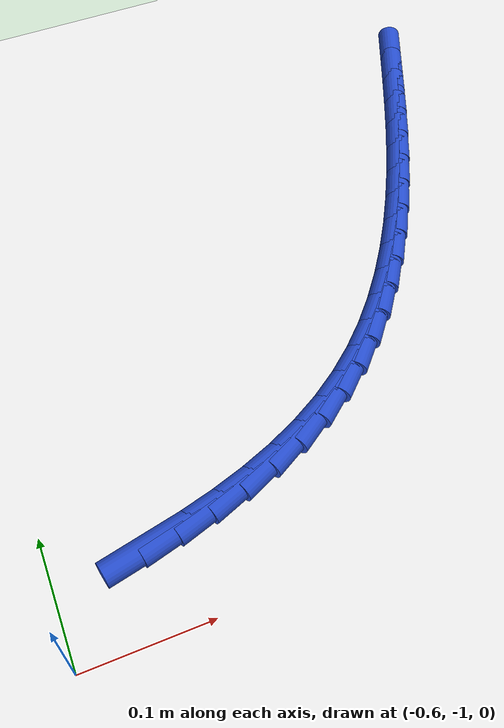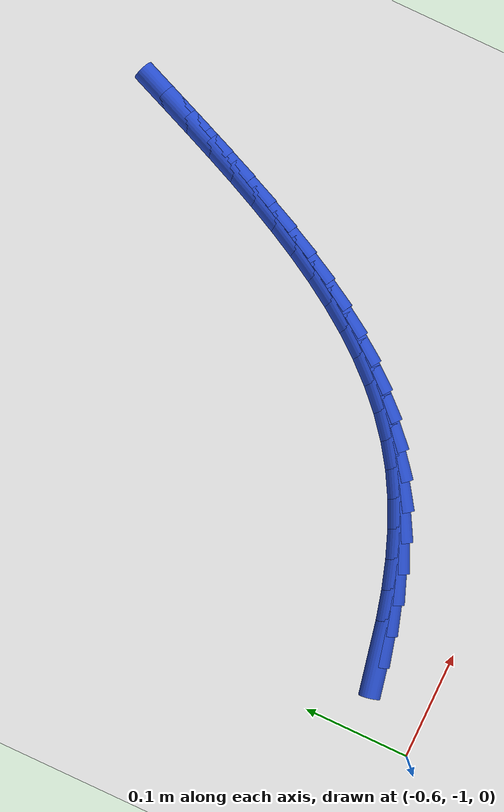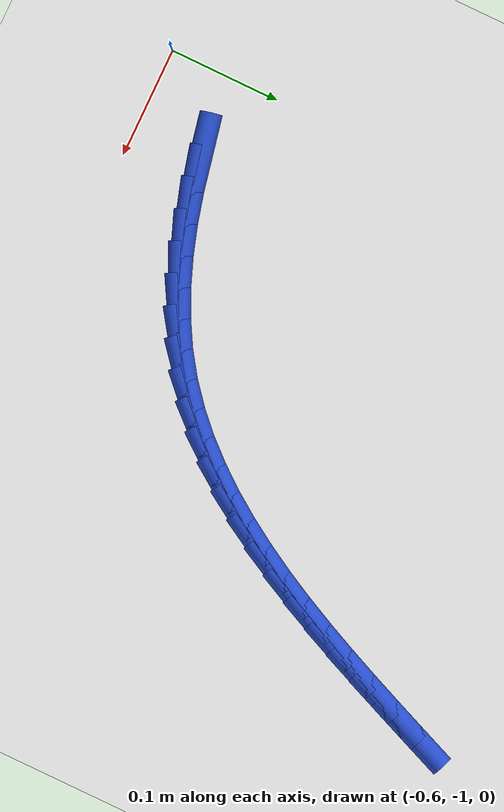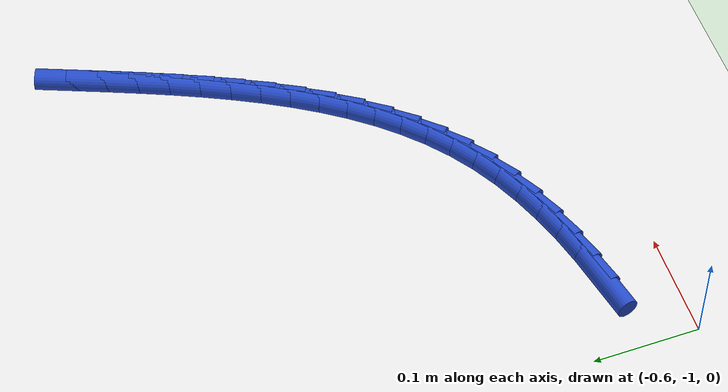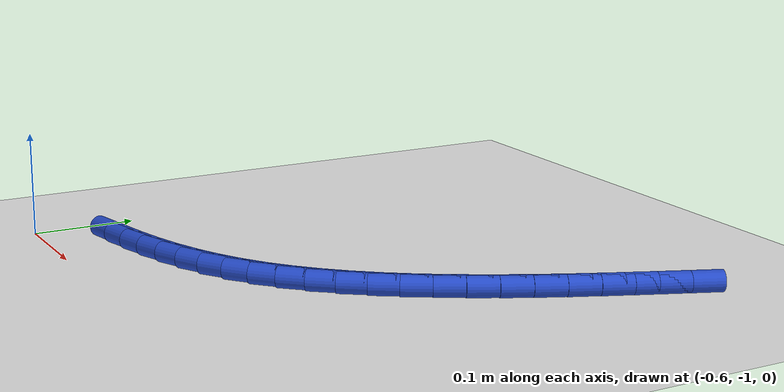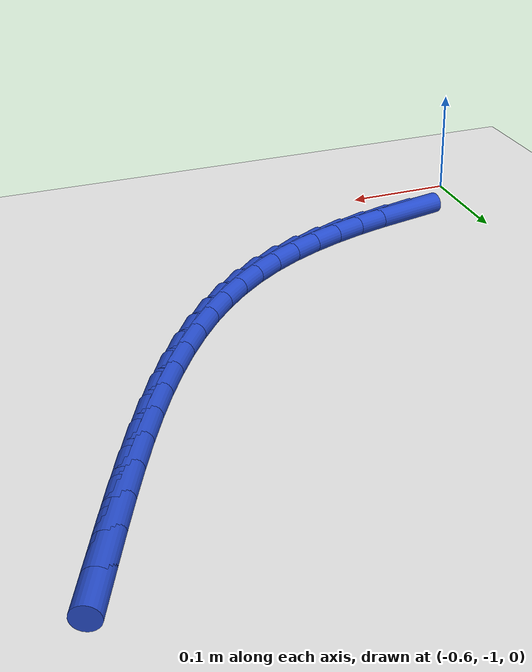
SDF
<sdf version="1.6">
 <world name="default">
  <model name="ground_plane">
   <static>1</static>
   <link name="link">
    <collision name="collision">
     <geometry><plane><normal>0 0 1</normal><size>100 100</size></plane></geometry>
     <surface><friction><ode><mu>100</mu><mu2>50</mu2></ode></friction></surface>
    </collision>
    <visual name="visual">
     <cast_shadows>0</cast_shadows>
     <geometry><plane><normal>0 0 1</normal><size>100 100</size></plane></geometry>
     <material>
      <script><uri>file://media/materials/scripts/gazebo.material</uri><name>Gazebo/WhiteGlow</name></script>
     </material>
    </visual>
   </link>
  </model>
  <model name="line">
   <link name="link_209">
    <pose>-0.5257086787405858 -0.9379063727491833 0.01 0 1.57 0.20687545780323452</pose>
    <collision name="collision">
     <geometry><cylinder><radius>0.01</radius><length>0.08</length></cylinder></geometry>
    </collision>
    <visual name="visual">
     <material>
      <script><name>Gazebo/Blue</name><uri>file://media/materials/scripts/gazebo.material</uri></script>
     </material>
     <geometry><cylinder><radius>0.01</radius><length>0.08</length></cylinder></geometry>
    </visual>
   </link>
   <link name="link_210">
    <pose>-0.49770723597419175 -0.9320294826262335 0.01 0 1.57 0.25379598229772776</pose>
    <collision name="collision">
     <geometry><cylinder><radius>0.01</radius><length>0.08</length></cylinder></geometry>
    </collision>
    <visual name="visual">
     <material>
      <script><name>Gazebo/Blue</name><uri>file://media/materials/scripts/gazebo.material</uri></script>
     </material>
     <geometry><cylinder><radius>0.01</radius><length>0.08</length></cylinder></geometry>
    </visual>
   </link>
   <link name="link_211">
    <pose>-0.47020699255068943 -0.9248962125755883 0.01 0 1.57 0.30713788859632263</pose>
    <collision name="collision">
     <geometry><cylinder><radius>0.01</radius><length>0.08</length></cylinder></geometry>
    </collision>
    <visual name="visual">
     <material>
      <script><name>Gazebo/Blue</name><uri>file://media/materials/scripts/gazebo.material</uri></script>
     </material>
     <geometry><cylinder><radius>0.01</radius><length>0.08</length></cylinder></geometry>
    </visual>
   </link>
   <link name="link_212">
    <pose>-0.44340550684644026 -0.916395462194677 0.01 0 1.57 0.36770519047508293</pose>
    <collision name="collision">
     <geometry><cylinder><radius>0.01</radius><length>0.08</length></cylinder></geometry>
    </collision>
    <visual name="visual">
     <material>
      <script><name>Gazebo/Blue</name><uri>file://media/materials/scripts/gazebo.material</uri></script>
     </material>
     <geometry><cylinder><radius>0.01</radius><length>0.08</length></cylinder></geometry>
    </visual>
   </link>
   <link name="link_213">
    <pose>-0.417500337237805 -0.9064161310809272 0.01 0 1.57 0.43630964592953353</pose>
    <collision name="collision">
     <geometry><cylinder><radius>0.01</radius><length>0.08</length></cylinder></geometry>
    </collision>
    <visual name="visual">
     <material>
      <script><name>Gazebo/Blue</name><uri>file://media/materials/scripts/gazebo.material</uri></script>
     </material>
     <geometry><cylinder><radius>0.01</radius><length>0.08</length></cylinder></geometry>
    </visual>
   </link>
   <link name="link_214">
    <pose>-0.3926890421011448 -0.8948471188317672 0.01 0 1.57 0.513676288088572</pose>
    <collision name="collision">
     <geometry><cylinder><radius>0.01</radius><length>0.08</length></cylinder></geometry>
    </collision>
    <visual name="visual">
     <material>
      <script><name>Gazebo/Blue</name><uri>file://media/materials/scripts/gazebo.material</uri></script>
     </material>
     <geometry><cylinder><radius>0.01</radius><length>0.08</length></cylinder></geometry>
    </visual>
   </link>
   <link name="link_215">
    <pose>-0.36916917981282066 -0.8815773250446245 0.01 0 1.57 0.5994863449745419</pose>
    <collision name="collision">
     <geometry><cylinder><radius>0.01</radius><length>0.08</length></cylinder></geometry>
    </collision>
    <visual name="visual">
     <material>
      <script><name>Gazebo/Blue</name><uri>file://media/materials/scripts/gazebo.material</uri></script>
     </material>
     <geometry><cylinder><radius>0.01</radius><length>0.08</length></cylinder></geometry>
    </visual>
   </link>
   <link name="link_216">
    <pose>-0.3471208679009718 -0.8665098833859479 0.01 0 1.57 0.6851793879150903</pose>
    <collision name="collision">
     <geometry><cylinder><radius>0.01</radius><length>0.08</length></cylinder></geometry>
    </collision>
    <visual name="visual">
     <material>
      <script><name>Gazebo/Blue</name><uri>file://media/materials/scripts/gazebo.material</uri></script>
     </material>
     <geometry><cylinder><radius>0.01</radius><length>0.08</length></cylinder></geometry>
    </visual>
   </link>
   <link name="link_217">
    <pose>-0.32654513942987223 -0.8496940844399317 0.01 0 1.57 0.7647209770650732</pose>
    <collision name="collision">
     <geometry><cylinder><radius>0.01</radius><length>0.08</length></cylinder></geometry>
    </collision>
    <visual name="visual">
     <material>
      <script><name>Gazebo/Blue</name><uri>file://media/materials/scripts/gazebo.material</uri></script>
     </material>
     <geometry><cylinder><radius>0.01</radius><length>0.08</length></cylinder></geometry>
    </visual>
   </link>
   <link name="link_218">
    <pose>-0.30733781614030714 -0.8312650853278315 0.01 0 1.57 0.8371744854656695</pose>
    <collision name="collision">
     <geometry><cylinder><radius>0.01</radius><length>0.08</length></cylinder></geometry>
    </collision>
    <visual name="visual">
     <material>
      <script><name>Gazebo/Blue</name><uri>file://media/materials/scripts/gazebo.material</uri></script>
     </material>
     <geometry><cylinder><radius>0.01</radius><length>0.08</length></cylinder></geometry>
    </visual>
   </link>
   <link name="link_219">
    <pose>-0.28939337684632777 -0.8113591391790536 0.01 0 1.57 0.902118112633444</pose>
    <collision name="collision">
     <geometry><cylinder><radius>0.01</radius><length>0.08</length></cylinder></geometry>
    </collision>
    <visual name="visual">
     <material>
      <script><name>Gazebo/Blue</name><uri>file://media/materials/scripts/gazebo.material</uri></script>
     </material>
     <geometry><cylinder><radius>0.01</radius><length>0.08</length></cylinder></geometry>
    </visual>
   </link>
   <link name="link_220">
    <pose>-0.27260630036198596 -0.7901124991230033 0.01 0 1.57 0.9594883262198984</pose>
    <collision name="collision">
     <geometry><cylinder><radius>0.01</radius><length>0.08</length></cylinder></geometry>
    </collision>
    <visual name="visual">
     <material>
      <script><name>Gazebo/Blue</name><uri>file://media/materials/scripts/gazebo.material</uri></script>
     </material>
     <geometry><cylinder><radius>0.01</radius><length>0.08</length></cylinder></geometry>
    </visual>
   </link>
   <link name="link_221">
    <pose>-0.2568710655013335 -0.7676614182890876 0.01 0 1.57 1.0094691415935575</pose>
    <collision name="collision">
     <geometry><cylinder><radius>0.01</radius><length>0.08</length></cylinder></geometry>
    </collision>
    <visual name="visual">
     <material>
      <script><name>Gazebo/Blue</name><uri>file://media/materials/scripts/gazebo.material</uri></script>
     </material>
     <geometry><cylinder><radius>0.01</radius><length>0.08</length></cylinder></geometry>
    </visual>
   </link>
   <link name="link_222">
    <pose>-0.24208215107842168 -0.7441421498067118 0.01 0 1.57 1.0523904862848732</pose>
    <collision name="collision">
     <geometry><cylinder><radius>0.01</radius><length>0.08</length></cylinder></geometry>
    </collision>
    <visual name="visual">
     <material>
      <script><name>Gazebo/Blue</name><uri>file://media/materials/scripts/gazebo.material</uri></script>
     </material>
     <geometry><cylinder><radius>0.01</radius><length>0.08</length></cylinder></geometry>
    </visual>
   </link>
   <link name="link_223">
    <pose>-0.22813403590730233 -0.7196909468052821 0.01 0 1.57 1.0886474132473112</pose>
    <collision name="collision">
     <geometry><cylinder><radius>0.01</radius><length>0.08</length></cylinder></geometry>
    </collision>
    <visual name="visual">
     <material>
      <script><name>Gazebo/Blue</name><uri>file://media/materials/scripts/gazebo.material</uri></script>
     </material>
     <geometry><cylinder><radius>0.01</radius><length>0.08</length></cylinder></geometry>
    </visual>
   </link>
   <link name="link_224">
    <pose>-0.21492119880202712 -0.6944440624142046 0.01 0 1.57 1.1186420247436297</pose>
    <collision name="collision">
     <geometry><cylinder><radius>0.01</radius><length>0.08</length></cylinder></geometry>
    </collision>
    <visual name="visual">
     <material>
      <script><name>Gazebo/Blue</name><uri>file://media/materials/scripts/gazebo.material</uri></script>
     </material>
     <geometry><cylinder><radius>0.01</radius><length>0.08</length></cylinder></geometry>
    </visual>
   </link>
   <link name="link_225">
    <pose>-0.20233811857664763 -0.6685377497628855 0.01 0 1.57 1.1427448333049814</pose>
    <collision name="collision">
     <geometry><cylinder><radius>0.01</radius><length>0.08</length></cylinder></geometry>
    </collision>
    <visual name="visual">
     <material>
      <script><name>Gazebo/Blue</name><uri>file://media/materials/scripts/gazebo.material</uri></script>
     </material>
     <geometry><cylinder><radius>0.01</radius><length>0.08</length></cylinder></geometry>
    </visual>
   </link>
   <link name="link_226">
    <pose>-0.19027927404521552 -0.6421082619807307 0.01 0 1.57 1.1612706229737115</pose>
    <collision name="collision">
     <geometry><cylinder><radius>0.01</radius><length>0.08</length></cylinder></geometry>
    </collision>
    <visual name="visual">
     <material>
      <script><name>Gazebo/Blue</name><uri>file://media/materials/scripts/gazebo.material</uri></script>
     </material>
     <geometry><cylinder><radius>0.01</radius><length>0.08</length></cylinder></geometry>
    </visual>
   </link>
   <link name="link_227">
    <pose>-0.17863914402178244 -0.6152918521971462 0.01 0 1.57 1.1744640807124287</pose>
    <collision name="collision">
     <geometry><cylinder><radius>0.01</radius><length>0.08</length></cylinder></geometry>
    </collision>
    <visual name="visual">
     <material>
      <script><name>Gazebo/Blue</name><uri>file://media/materials/scripts/gazebo.material</uri></script>
     </material>
     <geometry><cylinder><radius>0.01</radius><length>0.08</length></cylinder></geometry>
    </visual>
   </link>
   <link name="link_228">
    <pose>-0.16731220732040003 -0.5882247735415382 0.01 0 1.57 1.1824914026538118</pose>
    <collision name="collision">
     <geometry><cylinder><radius>0.01</radius><length>0.08</length></cylinder></geometry>
    </collision>
    <visual name="visual">
     <material>
      <script><name>Gazebo/Blue</name><uri>file://media/materials/scripts/gazebo.material</uri></script>
     </material>
     <geometry><cylinder><radius>0.01</radius><length>0.08</length></cylinder></geometry>
    </visual>
   </link>
   <link name="link_229">
    <pose>-0.15619294275511986 -0.5610432791433125 0.01 0 1.57 1.1854351322458059</pose>
    <collision name="collision">
     <geometry><cylinder><radius>0.01</radius><length>0.08</length></cylinder></geometry>
    </collision>
    <visual name="visual">
     <material>
      <script><name>Gazebo/Blue</name><uri>file://media/materials/scripts/gazebo.material</uri></script>
     </material>
     <geometry><cylinder><radius>0.01</radius><length>0.08</length></cylinder></geometry>
    </visual>
   </link>
  </model>
 </world>
</sdf>
